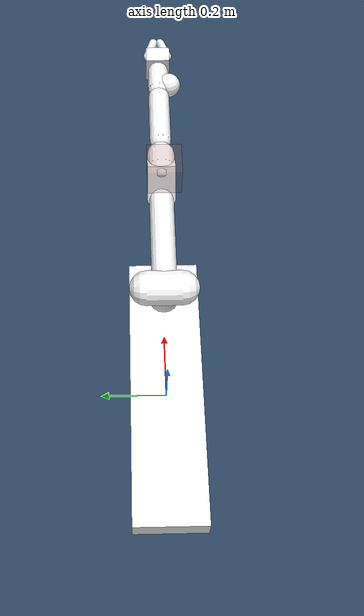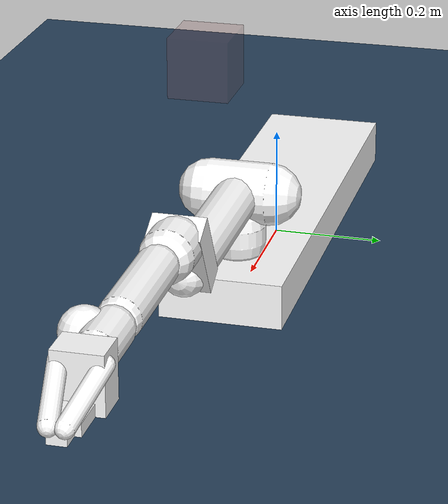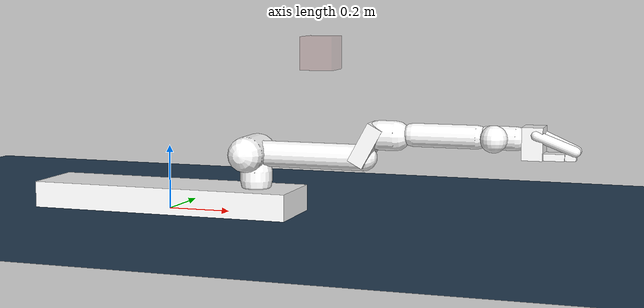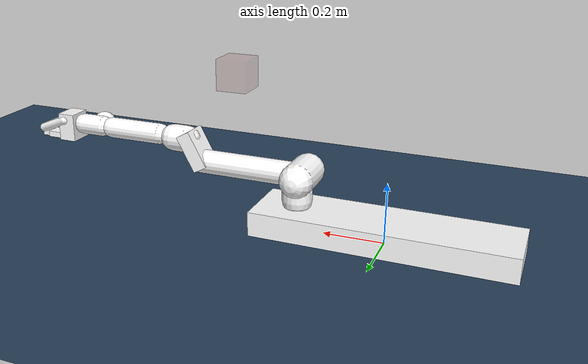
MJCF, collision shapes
<mujoco model="spot_mink">
<!-- Copyright (c) 2024 Boston Dynamics AI Institute LLC. All rights reserved. -->
  <include file="../../components/spot/compiler.xml" />
  <include file="../../components/spot/defs.xml" />
  <include file="../../components/common/ground_defs.xml" />
  <include file="../../components/spot/base_defs.xml" />
  <include file="../../components/spot/arm_defs.xml" />

  <visual>
    <headlight diffuse="0.6 0.6 0.6" ambient="0.3 0.3 0.3" specular="0 0 0"/>
    <rgba haze="0.15 0.25 0.35 1"/>
    <global azimuth="100" elevation="-35"/>
  </visual>

  <worldbody>
    <light pos="0 0 1.5" dir="0 0 -1" directional="true"/>
    <geom name="ground" type="plane" size="10 10 0.01" friction="0.8" priority="5" material="blue_grid"/>

    <body name="ghost0" pos="0 0 0">
      <joint name="base_x" type="slide" axis="1 0 0"/>
      <inertial mass="1" pos="0 0 0" diaginertia="1 1 1"/>

      <body name="ghost1" pos="0 0 0">
        <joint name="base_y" type="slide" axis="0 1 0"/>
        <inertial mass="1" pos="0 0 0" diaginertia="1 1 1"/>

        <body name="ghost2" pos="0 0 0">
          <joint name="base_z" type="slide" axis="0 0 1" range="0.3 0.65"/>
          <inertial mass="1" pos="0 0 0" diaginertia="1 1 1"/>

          <body name="ghost3" pos="0 0 0">
            <joint name="base_roll" type="hinge" axis="1 0 0" range="-0.5 0.5"/>
            <inertial mass="1" pos="0 0 0" diaginertia="1 1 1"/>

            <body name="ghost4" pos="0 0 0">
              <joint name="base_pitch" type="hinge" axis="0 1 0" range="-0.5 0.5"/>
              <inertial mass="1" pos="0 0 0" diaginertia="1 1 1"/>

              <body name="body" pos="0 0 0">
                <joint name="base_yaw" type="hinge" axis="0 0 1"/>
                <inertial mass="16.70765207" pos="0 0 -0.00496172" fullinertia="0.081543792 0.549231154 0.569454373 0 0 0"/>
                <geom name="body_0_visual" class="visual" mesh="body_0_visual" material="black"/>
                <geom name="body_1_visual" class="visual" mesh="body_1_visual" material="yellow"/>
                <geom name="body" class="collision" type="box" size="0.42 0.11 0.08"/>
                <site name="site_body" pos="0 0 0.0" size="0.01"/>

                <include file="../../components/spot/arm.xml" />
              </body>
            </body>
          </body>
        </body>
      </body>
    </body>
  </worldbody>

  <worldbody>
    <body name="target" pos="0.5 0 .5" quat="0 1 0 0" mocap="true">
      <geom type="box" size=".05 .05 .05" contype="0" conaffinity="0" rgba=".6 .3 .3 .2"/>
    </body>
  </worldbody>

  <keyframe>
    <key name="home" qpos="0 0 0.55  0 0 0  0 -0.9 1.8 0 -0.9 0 0"/>
  </keyframe>
</mujoco>

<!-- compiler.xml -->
<mujoco>
  <compiler angle="radian" assetdir="../../../meshes/spot/" autolimits="true"/>

  <option timestep="0.01" solver="Newton" integrator="implicitfast" density="1">
    <!-- iterations="5" ls_iterations="10" -->
  </option>

</mujoco>

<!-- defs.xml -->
<mujoco>
  <asset>
    <material name="black" rgba="0.2 0.2 0.2 1"/>
    <material name="yellow" rgba="1 0.8 0.03 1"/>
    <texture name="bdai_texture" type="2d" file="bdaii_spot_wrap.png"/>
    <material name="bdai" texture="bdai_texture" specular="1" shininess="11"/>
  </asset>

  <default>
    <default class="visual">
      <geom type="mesh" contype="0" conaffinity="0" group="2"/>
    </default>
    <default class="collision">
      <geom group="3" friction="0.15" priority="4" rgba="1 1 1 1">
      </geom>
    </default>
  </default>
</mujoco>

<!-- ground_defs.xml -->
<mujoco>
  <asset>
    <texture name="blue_grid" type="2d" builtin="checker" rgb1="0.2 0.3 0.4" rgb2="0.1 0.2 0.3" width="300" height="300" mark="edge" markrgb="0.8 0.8 0.8"/>
    <material name="blue_grid" texture="blue_grid" texrepeat="5 5" texuniform="true" reflectance=".2"/>
  </asset>
</mujoco>

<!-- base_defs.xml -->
<mujoco>
  <asset>
    <mesh name="body" file="base/collision/body_collision.obj"/>
    <mesh name="body_0_visual" file="base/visual/body_0.obj"/>
    <mesh name="body_1_visual" file="base/visual/body_1.obj"/>
  </asset>

  <default>
    <default class="base">
      <joint damping="30" range="-3 3"/>
      <position kp="300" ctrlrange="-3 3" forcerange="-1000 1000"/>
    </default>
  </default>
</mujoco>

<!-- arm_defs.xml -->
<mujoco>
  <asset>
    <mesh name="arm_link_sh0_base" file="arm/collision/arm_link_sh0_base.obj"/>
    <mesh name="arm_link_sh0_left_motor" file="arm/collision/arm_link_sh0_left_motor.obj"/>
    <mesh name="arm_link_sh0_right_motor" file="arm/collision/arm_link_sh0_right_motor.obj"/>
    <mesh name="arm_link_sh1" file="arm/collision/arm_link_sh1.obj"/>
    <mesh name="arm_link_el0" file="arm/collision/arm_link_el0.obj"/>
    <mesh name="arm_link_el1" file="arm/collision/arm_link_el1_main.obj"/>
    <mesh name="arm_link_el1_main" file="arm/collision/arm_link_el1_main.obj"/>
    <mesh name="arm_link_el1_lip" file="arm/collision/arm_link_el1_lip.obj"/>
    <mesh name="arm_link_wr0" file="arm/collision/arm_link_wr0.obj"/>
    <mesh name="arm_link_wr1" file="arm/collision/arm_link_wr1.obj"/>

    <mesh name="left_hinge" file="gripper/collision/left_hinge.obj"/>
    <mesh name="left_finger" file="gripper/collision/left_finger.obj"/>
    <mesh name="left_tooth" file="gripper/collision/left_tooth.obj"/>
    <mesh name="right_hinge" file="gripper/collision/right_hinge.obj"/>
    <mesh name="right_finger" file="gripper/collision/right_finger.obj"/>
    <mesh name="right_tooth" file="gripper/collision/right_tooth.obj"/>
    <mesh name="front_jaw" file="gripper/collision/front_jaw.obj"/>
    <mesh name="middle_jaw" file="gripper/collision/middle_jaw.obj"/>
    <mesh name="jaw_tooth" file="gripper/collision/jaw_tooth.obj"/>

    <mesh name="arm_link_sh0_visual" file="arm/visual/arm_link_sh0.obj"/>
    <mesh name="arm_link_sh1_0_visual" file="arm/visual/arm_link_sh1_0.obj"/>
    <mesh name="arm_link_sh1_1_visual" file="arm/visual/arm_link_sh1_1.obj"/>
    <mesh name="arm_link_el0_visual" file="arm/visual/arm_link_el0.obj"/>
    <mesh name="arm_link_el1_0_visual" file="arm/visual/arm_link_el1_0.obj"/>
    <mesh name="arm_link_el1_1_visual" file="arm/visual/arm_link_el1_1.obj"/>
    <mesh name="arm_link_wr0_0_visual" file="arm/visual/arm_link_wr0_0.obj"/>
    <mesh name="arm_link_wr0_1_visual" file="arm/visual/arm_link_wr0_1.obj"/>
    <mesh name="arm_link_wr1_0_visual" file="arm/visual/arm_link_wr1_0.obj"/>
    <mesh name="arm_link_wr1_1_visual" file="arm/visual/arm_link_wr1_1.obj"/>
    <mesh name="arm_link_fngr_0_visual" file="gripper/visual/arm_link_fngr_0.obj"/>
    <mesh name="arm_link_fngr_1_visual" file="gripper/visual/arm_link_fngr_1.obj"/>
  </asset>

  <default>
    <!-- The arm damping is higher than the damping gains in spot-sim, because actual joint damping is unknown -->
    <default class="arm">
      <default class="arm_sh0">
        <joint damping="51.0" range="-2.61799387799149441136 3.14159265358979311599"/>
      </default>
      <default class="arm_sh1">
        <joint damping="76.5" range="-3.14159265358979311599 0.52359877559829881565"/>
      </default>
      <default class="arm_el0">
        <joint damping="51.0" range="0 3.14159265358979311599"/>
      </default>
      <default class="arm_el1">
        <joint damping="10.2" range="-2.79252680319092716487 2.79252680319092716487"/>
      </default>
      <default class="arm_wr0">
        <joint damping="10.2" range="-1.83259571459404613236 1.83259571459404613236"/>
      </default>
      <default class="arm_wr1">
        <joint damping="10.2" range="-2.87979326579064354163 2.87979326579064354163"/>
      </default>
      <default class="arm_f1x">
        <joint damping="1.6" range="-1.57 0"/>
      </default>
    </default>
  </default>

  <actuator>
    <position name="act_3" joint="arm_sh0" kp="1020.0" ctrlrange="-2.61799387799149441136 3.14159265358979311599" forcerange="-90.9 90.0"/>
    <position name="act_4" joint="arm_sh1" kp="255" ctrlrange="-3.14159265358979311599 0.52359877559829881565" forcerange="-181.8 181.8"/>
    <position name="act_5" joint="arm_el0" kp="204.0" ctrlrange="0 3.14159265358979311599" forcerange="-90.9 90.0"/>
    <position name="act_6" joint="arm_el1" kp="102.0" ctrlrange="-2.79252680319092716487 2.79252680319092716487" forcerange="-30.3 30.3"/>
    <position name="act_7" joint="arm_wr0" kp="102.0" ctrlrange="-1.83259571459404613236 1.83259571459404613236" forcerange="-30.9 30.0"/>
    <position name="act_8" joint="arm_wr1" kp="102.0" ctrlrange="-2.87979326579064354163 2.87979326579064354163" forcerange="-30.9 30.0"/>
    <position name="act_9" joint="arm_f1x" kp="16.0" ctrlrange="-1.57 0" forcerange="-15.32 15.32"/>
  </actuator>

</mujoco>

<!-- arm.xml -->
<mujoco model="spot_arm">
<!-- Copyright (c) 2023 Boston Dynamics AI Institute LLC. All rights reserved. -->
<!-- fullinertia="M(1,1), M(2,2), M(3,3), M(1,2), M(1,3), M(2,3)" -->
  <body name="arm">
    <body name="arm_link_sh0" pos="0.292 0 0.188" gravcomp="1">
      <joint name="arm_sh0" class="arm_sh0" type="hinge" axis="0 0 1" pos="0 0 0"/>
      <inertial mass="1.904699" fullinertia="0.008896 0.004922 0.0073030 0.000005 -0.000193 0.000033" pos="-0.008399 0.000272 -0.024603"/>
      <geom name="arm_link_sh0_visual" class="visual" mesh="arm_link_sh0_visual" material="black"/>
      <geom name="arm_link_sh0_base" class="collision" type="capsule" size="0.05 0.015" pos="0 0 -0.07"/>
      <geom name="arm_link_sh0_motor" class="collision" type="capsule" size="0.055 0.055" pos="-0.015 0 0" euler="1.57079632679 0 0"/>
      <site name="site_arm_link_sh0" pos="0 0 0" size="0.01"/>

      <body name="arm_link_sh1" pos="0 0 0" gravcomp="1">
        <joint name="arm_sh1" class="arm_sh1" type="hinge" axis="0 1 0" pos="0 0 0"/>
        <inertial mass="1.85701942" fullinertia="0.00261526 0.02703868 0.02819929 -0.00040406 0.00010019 0.00000547" pos="0.08084909 -0.00167243 0.00045644" />
        <geom name="arm_link_sh1_0_visual" class="visual" mesh="arm_link_sh1_0_visual" material="yellow"/>
        <geom name="arm_link_sh1_1_visual" class="visual" mesh="arm_link_sh1_1_visual" material="black"/>
        <geom name="arm_link_sh1" class="collision" type="capsule" size="0.04 0.175" pos="0.17 0 0" euler="0 1.57079632679 0"/>
        <site name="site_arm_link_sh1" pos="0 0 0" size="0.01"/>

        <body name="arm_link_el0" pos="0.3385 0 0" gravcomp="1">
          <joint name="arm_el0" class="arm_el0" type="hinge" axis="0 1 0" pos="0 0 0"/>
          <inertial mass="0.94831958" fullinertia="0.00175909 0.00269233 0.00202854 0.00006087  0.00092380 0.00005217" pos="0.04476621 -0.00271130 0.04991363" />
          <geom name="arm_link_el0_visual" class="visual" mesh="arm_link_el0_visual" material="black"/>
          <geom name="arm_link_el0_joint" class="collision" type="box" size="0.025 0.045 0.065" pos="0.02 0 0.04" euler= "0 0.5 0"/>
          <geom name="arm_link_el0_body" class="collision" type="capsule" size="0.045 0.025" pos="0.08 0 0.07" euler="0 1.57079632679 0"/>
          <site name="site_arm_link_el0" pos="0 0 0" size="0.01"/>

          <body name="arm_link_el1" pos="0.4033 0 0.075" gravcomp="1">
            <joint name="arm_el1" class="arm_el1" type="hinge" axis="1 0 0" pos="0 0 0"/>
            <inertial mass="1.01754820" fullinertia="0.00117710 0.01649389 0.01689901 -0.00260549 0.00000156 -0.00000287" pos="-0.16867073 -0.01616121 0.00001149" />
            <geom name="arm_link_el1_0_visual" class="visual" mesh="arm_link_el1_0_visual" material="yellow"/>
            <geom name="arm_link_el1_1_visual" class="visual" mesh="arm_link_el1_1_visual" material="black"/>
            <geom name="arm_link_el1" type="capsule" class="collision" size="0.035 0.095" pos="-0.15 0 0" euler="0 1.57079632679 0"/>
            <geom name="arm_link_el1_knob" type="sphere" class="collision" size="0.04" pos="0 -0.035 0"/>
            <site name="site_arm_link_el1" pos="0 0 0" size="0.01"/>

            <body name="arm_link_wr0" pos="0 0 0" gravcomp="1">
              <joint name="arm_wr0" class="arm_wr0" type="hinge" axis="0 1 0" pos="0 0 0"/>
              <inertial mass="0.58263740" fullinertia="0.00046738 0.00044968 0.00053616 0.00006957 0.00000040 0.00000016" pos="0.00952465 -0.01144406 0.00000186" />
              <geom name="arm_link_wr0_0_visual" class="visual" mesh="arm_link_wr0_0_visual" material="yellow"/>
              <geom name="arm_link_wr0_1_visual" class="visual" mesh="arm_link_wr0_1_visual" material="black"/>
              <geom name="arm_link_wr0" class="collision" type="capsule" size="0.035 0.04" pos="0.02 0 0" euler="0 1.57079632679 0"/>
              <site name="site_arm_link_wr0" pos="0 0 0" size="0.01"/>

              <body name="arm_link_wr1" pos="0 0 0" gravcomp="1">
                <joint name="arm_wr1" class="arm_wr1" type="hinge" axis="1 0 0" pos="0 0 0"/>
                <inertial mass="0.93335298" fullinertia="0.00098836 0.00197018 0.00165791 -0.00000126 -0.00036919 -0.00000074" pos="0.09751283 0.00009265 -0.01120523" />
                <geom name="arm_link_wr1_0_visual" class="visual" mesh="arm_link_wr1_0_visual" material="yellow"/>
                <geom name="arm_link_wr1_1_visual" class="visual" mesh="arm_link_wr1_1_visual" material="black"/>
                <geom name="arm_link_wr1" class="collision" type="box" size="0.03 0.04 0.0475" pos="0.11 0 -0.01" />
                <geom name="bottom_jaw" class="collision" type="box" size="0.03 0.025 0.01" pos="0.17 0 -0.0475" />
                <geom name="front_jaw" class="collision" type="box" size="0.016 0.015 0.01" pos="0.215 0 -0.0475" />
                <geom name="front_jaw_tooth" class="collision" type="box" size="0.005 0.01 0.005" pos="0.224 0 -0.039" euler="0 1 0"/>
                <site name="site_arm_link_wr1" pos="0 0 0" size="0.01"/>

                <body name="arm_link_fngr" pos="0.11745 0.0 0.014820" gravcomp="1">
                  <joint name="arm_f1x" class="arm_f1x" type="hinge" axis="0 1 0" pos="0 0 0"/>
                  <inertial mass="0.22383315" fullinertia="0.00025226 0.00048453 0.00059145 -0.00000536 -0.00015067 0.00000184" pos="0.03565178 0.00067200 -0.01227516" />
                  <geom name="arm_link_fngr_0_visual" class="visual" mesh="arm_link_fngr_0_visual" material="yellow"/>
                  <geom name="arm_link_fngr_1_visual" class="visual" mesh="arm_link_fngr_1_visual" material="black"/>
                  <geom name="left_jaw" type="capsule" class="collision" size="0.015 0.06" pos="0.057 0.023 -0.023" euler="-0.45 2.0 0"/>
                  <geom name="right_jaw" type="capsule" class="collision" size="0.015 0.06" pos="0.057 -0.023 -0.023" euler="0.45 2.0 0"/>
                  <site name="site_arm_link_fngr" pos="0 0 0" size="0.01"/>
                </body>
              </body>
            </body>
          </body>
        </body>
      </body>
    </body>
  </body>
</mujoco>
